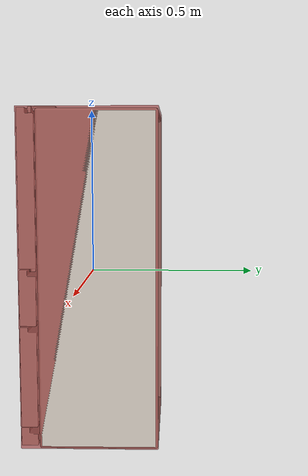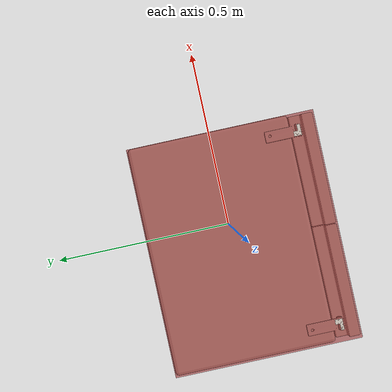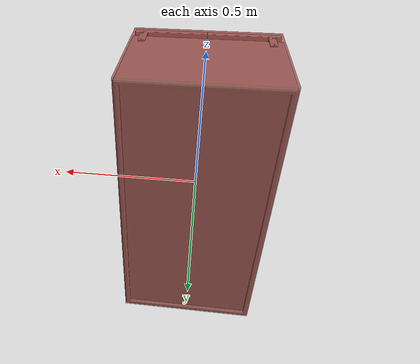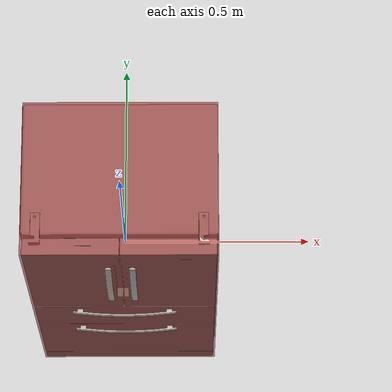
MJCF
<mujoco model="model">
  <asset>
    <texture file="visuals/material_0.png" name="tex-model" type="2d"/>
    <texture type="2d" name="image23" file="visuals/image23.png"/>
    <texture type="2d" name="image0" file="visuals/image0.png"/>
    <material name="model" reflectance="0.5" texrepeat="1 1" texture="tex-model" texuniform="false"/>
    <material name="TX_Fridge_3_1" texture="image23" specular="0.5" shininess="0.25"/>
    <material name="TX_Fridge_3_2" texture="image0" specular="0.5" shininess="0.25"/>
    <mesh file="visuals/model_0.obj" name="model_0_vis" scale="1 1 1"/>
    <mesh file="visuals/model_1.obj" name="model_1_vis" scale="1 1 1"/>
  </asset>
  <default>
    <default class="visual">
      <geom conaffinity="0" contype="0" group="1" type="mesh"/>
    </default>
    <default class="collision">
      <geom group="0" rgba="0.5 0 0 0.5"/>
    </default>
    <default class="region">
      <geom group="1" conaffinity="0" contype="0" rgba="0 1 0 0"/>
    </default>
  </default>
  <worldbody>
    <body>
      <!-- exterior bounding box points -->
      <!-- interior bounding box points -->
      <body name="object">
        <geom solimp="0.998 0.998 0.001" solref="0.001 1" density="100" friction="0.95 0.3 0.1" type="mesh" mesh="model_0_vis" material="TX_Fridge_3_1" class="visual"/>
        <geom solimp="0.998 0.998 0.001" solref="0.001 1" density="100" friction="0.95 0.3 0.1" type="mesh" mesh="model_1_vis" material="TX_Fridge_3_2" class="visual"/>
        <geom class="collision" type="box" pos="0 0.01 0" size="0.2478547080790659 0.203 0.5"/>
        <geom class="region" name="reg_main" type="box" pos="0.0 0.00949264843596044 0.0" size="0.2478547080790659 0.20249264843596043 0.5"/>
      </body>
    </body>
  </worldbody>
</mujoco>
